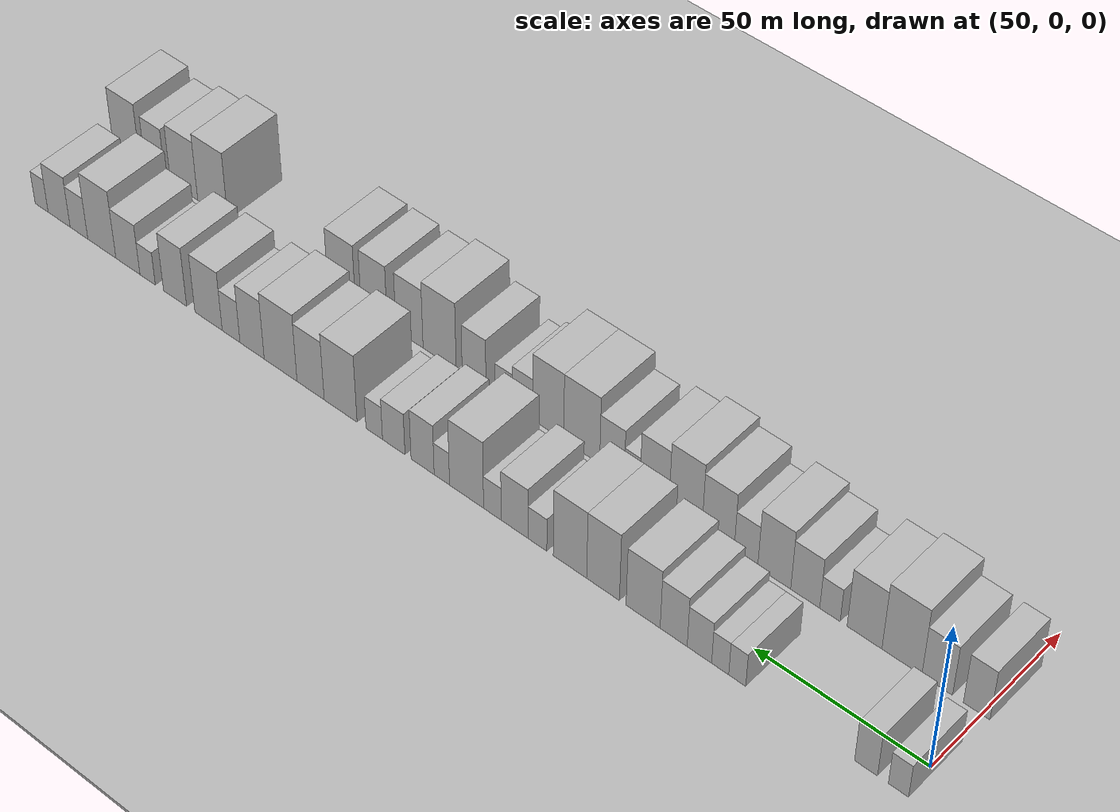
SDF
<sdf version="1.6">
 <world name="default">
  <include><name>ground_plane_1</name><uri>model://HANNAS_ground_plane</uri></include>
  <include>
   <name>ground_plane_2</name>
   <uri>model://HANNAS_ground_plane</uri>
   <pose>100 0 0  0 0 0</pose>
  </include>
  <model name="building_31">
   <static>1</static>
   <pose>50.0000 1.4991 0 0.000000 0.000000 0.000000</pose>
   <link name="link">
    <pose>0 0 6.00 0 0 0</pose>
    <collision name="collision"><geometry><box><size>20.0000 5.5599 12.0000</size></box></geometry></collision>
    <visual name="visual">
     <cast_shadows>0</cast_shadows>
     <geometry><box><size>20.0000 5.5599 12.0000</size></box></geometry>
     <material>
      <script>
       <uri>model://HANNAS_wall/materials/scripts</uri>
       <uri>model://HANNAS_wall/materials/textures</uri>
       <name>vrc/HANNAS_wall</name>
      </script>
     </material>
    </visual>
   </link>
  </model>
  <model name="building_32">
   <static>1</static>
   <pose>50.0000 10.4572 0 0.000000 0.000000 0.000000</pose>
   <link name="link">
    <pose>0 0 7.50 0 0 0</pose>
    <collision name="collision"><geometry><box><size>20.0000 6.3563 15.0000</size></box></geometry></collision>
    <visual name="visual">
     <cast_shadows>0</cast_shadows>
     <geometry><box><size>20.0000 6.3563 15.0000</size></box></geometry>
     <material>
      <script>
       <uri>model://HANNAS_wall/materials/scripts</uri>
       <uri>model://HANNAS_wall/materials/textures</uri>
       <name>vrc/HANNAS_wall</name>
      </script>
     </material>
    </visual>
   </link>
  </model>
  <model name="building_33">
   <static>1</static>
   <pose>50.0000 47.0578 0 0.000000 0.000000 0.000000</pose>
   <link name="link">
    <pose>0 0 6.00 0 0 0</pose>
    <collision name="collision"><geometry><box><size>20.0000 4.9483 12.0000</size></box></geometry></collision>
    <visual name="visual">
     <cast_shadows>0</cast_shadows>
     <geometry><box><size>20.0000 4.9483 12.0000</size></box></geometry>
     <material>
      <script>
       <uri>model://HANNAS_wall/materials/scripts</uri>
       <uri>model://HANNAS_wall/materials/textures</uri>
       <name>vrc/HANNAS_wall</name>
      </script>
     </material>
    </visual>
   </link>
  </model>
  <model name="building_34">
   <static>1</static>
   <pose>50.0000 52.0411 0 0.000000 0.000000 0.000000</pose>
   <link name="link">
    <pose>0 0 6.00 0 0 0</pose>
    <collision name="collision"><geometry><box><size>20.0000 5.0184 12.0000</size></box></geometry></collision>
    <visual name="visual">
     <cast_shadows>0</cast_shadows>
     <geometry><box><size>20.0000 5.0184 12.0000</size></box></geometry>
     <material>
      <script>
       <uri>model://HANNAS_wall/materials/scripts</uri>
       <uri>model://HANNAS_wall/materials/textures</uri>
       <name>vrc/HANNAS_wall</name>
      </script>
     </material>
    </visual>
   </link>
  </model>
  <model name="building_35">
   <static>1</static>
   <pose>50.0000 58.1626 0 0.000000 0.000000 0.000000</pose>
   <link name="link">
    <pose>0 0 7.50 0 0 0</pose>
    <collision name="collision"><geometry><box><size>20.0000 7.2245 15.0000</size></box></geometry></collision>
    <visual name="visual">
     <cast_shadows>0</cast_shadows>
     <geometry><box><size>20.0000 7.2245 15.0000</size></box></geometry>
     <material>
      <script>
       <uri>model://HANNAS_wall/materials/scripts</uri>
       <uri>model://HANNAS_wall/materials/textures</uri>
       <name>vrc/HANNAS_wall</name>
      </script>
     </material>
    </visual>
   </link>
  </model>
  <model name="building_36">
   <static>1</static>
   <pose>50.0000 65.8021 0 0.000000 0.000000 0.000000</pose>
   <link name="link">
    <pose>0 0 9.00 0 0 0</pose>
    <collision name="collision"><geometry><box><size>20.0000 8.0544 18.0000</size></box></geometry></collision>
    <visual name="visual">
     <cast_shadows>0</cast_shadows>
     <geometry><box><size>20.0000 8.0544 18.0000</size></box></geometry>
     <material>
      <script>
       <uri>model://HANNAS_wall/materials/scripts</uri>
       <uri>model://HANNAS_wall/materials/textures</uri>
       <name>vrc/HANNAS_wall</name>
      </script>
     </material>
    </visual>
   </link>
  </model>
  <model name="building_37">
   <static>1</static>
   <pose>50.0000 74.9746 0 0.000000 0.000000 0.000000</pose>
   <link name="link">
    <pose>0 0 10.50 0 0 0</pose>
    <collision name="collision"><geometry><box><size>20.0000 10.2906 21.0000</size></box></geometry></collision>
    <visual name="visual">
     <cast_shadows>0</cast_shadows>
     <geometry><box><size>20.0000 10.2906 21.0000</size></box></geometry>
     <material>
      <script>
       <uri>model://HANNAS_wall/materials/scripts</uri>
       <uri>model://HANNAS_wall/materials/textures</uri>
       <name>vrc/HANNAS_wall</name>
      </script>
     </material>
    </visual>
   </link>
  </model>
  <model name="building_38">
   <static>1</static>
   <pose>50.0000 87.1517 0 0.000000 0.000000 0.000000</pose>
   <link name="link">
    <pose>0 0 12.00 0 0 0</pose>
    <collision name="collision"><geometry><box><size>20.0000 10.0634 24.0000</size></box></geometry></collision>
    <visual name="visual">
     <cast_shadows>0</cast_shadows>
     <geometry><box><size>20.0000 10.0634 24.0000</size></box></geometry>
     <material>
      <script>
       <uri>model://HANNAS_wall/materials/scripts</uri>
       <uri>model://HANNAS_wall/materials/textures</uri>
       <name>vrc/HANNAS_wall</name>
      </script>
     </material>
    </visual>
   </link>
  </model>
  <model name="building_39">
   <static>1</static>
   <pose>50.0000 97.3643 0 0.000000 0.000000 0.000000</pose>
   <link name="link">
    <pose>0 0 12.00 0 0 0</pose>
    <collision name="collision"><geometry><box><size>20.0000 10.3618 24.0000</size></box></geometry></collision>
    <visual name="visual">
     <cast_shadows>0</cast_shadows>
     <geometry><box><size>20.0000 10.3618 24.0000</size></box></geometry>
     <material>
      <script>
       <uri>model://HANNAS_wall/materials/scripts</uri>
       <uri>model://HANNAS_wall/materials/textures</uri>
       <name>vrc/HANNAS_wall</name>
      </script>
     </material>
    </visual>
   </link>
  </model>
  <model name="building_40">
   <static>1</static>
   <pose>50.0000 107.4989 0 0.000000 0.000000 0.000000</pose>
   <link name="link">
    <pose>0 0 6.00 0 0 0</pose>
    <collision name="collision"><geometry><box><size>20.0000 5.9075 12.0000</size></box></geometry></collision>
    <visual name="visual">
     <cast_shadows>0</cast_shadows>
     <geometry><box><size>20.0000 5.9075 12.0000</size></box></geometry>
     <material>
      <script>
       <uri>model://HANNAS_wall/materials/scripts</uri>
       <uri>model://HANNAS_wall/materials/textures</uri>
       <name>vrc/HANNAS_wall</name>
      </script>
     </material>
    </visual>
   </link>
  </model>
  <model name="building_41">
   <static>1</static>
   <pose>50.0000 114.7138 0 0.000000 0.000000 0.000000</pose>
   <link name="link">
    <pose>0 0 9.00 0 0 0</pose>
    <collision name="collision"><geometry><box><size>20.0000 8.5223 18.0000</size></box></geometry></collision>
    <visual name="visual">
     <cast_shadows>0</cast_shadows>
     <geometry><box><size>20.0000 8.5223 18.0000</size></box></geometry>
     <material>
      <script>
       <uri>model://HANNAS_wall/materials/scripts</uri>
       <uri>model://HANNAS_wall/materials/textures</uri>
       <name>vrc/HANNAS_wall</name>
      </script>
     </material>
    </visual>
   </link>
  </model>
  <model name="building_42">
   <static>1</static>
   <pose>50.0000 121.7857 0 0.000000 0.000000 0.000000</pose>
   <link name="link">
    <pose>0 0 6.00 0 0 0</pose>
    <collision name="collision"><geometry><box><size>20.0000 5.6216 12.0000</size></box></geometry></collision>
    <visual name="visual">
     <cast_shadows>0</cast_shadows>
     <geometry><box><size>20.0000 5.6216 12.0000</size></box></geometry>
     <material>
      <script>
       <uri>model://HANNAS_wall/materials/scripts</uri>
       <uri>model://HANNAS_wall/materials/textures</uri>
       <name>vrc/HANNAS_wall</name>
      </script>
     </material>
    </visual>
   </link>
  </model>
  <model name="building_43">
   <static>1</static>
   <pose>50.0000 130.0969 0 0.000000 0.000000 0.000000</pose>
   <link name="link">
    <pose>0 0 12.00 0 0 0</pose>
    <collision name="collision"><geometry><box><size>20.0000 11.0009 24.0000</size></box></geometry></collision>
    <visual name="visual">
     <cast_shadows>0</cast_shadows>
     <geometry><box><size>20.0000 11.0009 24.0000</size></box></geometry>
     <material>
      <script>
       <uri>model://HANNAS_wall/materials/scripts</uri>
       <uri>model://HANNAS_wall/materials/textures</uri>
       <name>vrc/HANNAS_wall</name>
      </script>
     </material>
    </visual>
   </link>
  </model>
  <model name="building_44">
   <static>1</static>
   <pose>50.0000 138.1071 0 0.000000 0.000000 0.000000</pose>
   <link name="link">
    <pose>0 0 6.00 0 0 0</pose>
    <collision name="collision"><geometry><box><size>20.0000 5.0195 12.0000</size></box></geometry></collision>
    <visual name="visual">
     <cast_shadows>0</cast_shadows>
     <geometry><box><size>20.0000 5.0195 12.0000</size></box></geometry>
     <material>
      <script>
       <uri>model://HANNAS_wall/materials/scripts</uri>
       <uri>model://HANNAS_wall/materials/textures</uri>
       <name>vrc/HANNAS_wall</name>
      </script>
     </material>
    </visual>
   </link>
  </model>
  <model name="building_45">
   <static>1</static>
   <pose>50.0000 144.4214 0 0.000000 0.000000 0.000000</pose>
   <link name="link">
    <pose>0 0 9.00 0 0 0</pose>
    <collision name="collision"><geometry><box><size>20.0000 7.6092 18.0000</size></box></geometry></collision>
    <visual name="visual">
     <cast_shadows>0</cast_shadows>
     <geometry><box><size>20.0000 7.6092 18.0000</size></box></geometry>
     <material>
      <script>
       <uri>model://HANNAS_wall/materials/scripts</uri>
       <uri>model://HANNAS_wall/materials/textures</uri>
       <name>vrc/HANNAS_wall</name>
      </script>
     </material>
    </visual>
   </link>
  </model>
  <model name="building_46">
   <static>1</static>
   <pose>50.0000 153.9650 0 0.000000 0.000000 0.000000</pose>
   <link name="link">
    <pose>0 0 7.50 0 0 0</pose>
    <collision name="collision"><geometry><box><size>20.0000 7.4780 15.0000</size></box></geometry></collision>
    <visual name="visual">
     <cast_shadows>0</cast_shadows>
     <geometry><box><size>20.0000 7.4780 15.0000</size></box></geometry>
     <material>
      <script>
       <uri>model://HANNAS_wall/materials/scripts</uri>
       <uri>model://HANNAS_wall/materials/textures</uri>
       <name>vrc/HANNAS_wall</name>
      </script>
     </material>
    </visual>
   </link>
  </model>
  <model name="building_47">
   <static>1</static>
   <pose>50.0000 160.4777 0 0.000000 0.000000 0.000000</pose>
   <link name="link">
    <pose>0 0 6.00 0 0 0</pose>
    <collision name="collision"><geometry><box><size>20.0000 5.5474 12.0000</size></box></geometry></collision>
    <visual name="visual">
     <cast_shadows>0</cast_shadows>
     <geometry><box><size>20.0000 5.5474 12.0000</size></box></geometry>
     <material>
      <script>
       <uri>model://HANNAS_wall/materials/scripts</uri>
       <uri>model://HANNAS_wall/materials/textures</uri>
       <name>vrc/HANNAS_wall</name>
      </script>
     </material>
    </visual>
   </link>
  </model>
  <model name="building_48">
   <static>1</static>
   <pose>50.0000 171.8402 0 0.000000 0.000000 0.000000</pose>
   <link name="link">
    <pose>0 0 12.00 0 0 0</pose>
    <collision name="collision"><geometry><box><size>20.0000 11.1776 24.0000</size></box></geometry></collision>
    <visual name="visual">
     <cast_shadows>0</cast_shadows>
     <geometry><box><size>20.0000 11.1776 24.0000</size></box></geometry>
     <material>
      <script>
       <uri>model://HANNAS_wall/materials/scripts</uri>
       <uri>model://HANNAS_wall/materials/textures</uri>
       <name>vrc/HANNAS_wall</name>
      </script>
     </material>
    </visual>
   </link>
  </model>
  <model name="building_49">
   <static>1</static>
   <pose>50.0000 182.1017 0 0.000000 0.000000 0.000000</pose>
   <link name="link">
    <pose>0 0 10.50 0 0 0</pose>
    <collision name="collision"><geometry><box><size>20.0000 9.3454 21.0000</size></box></geometry></collision>
    <visual name="visual">
     <cast_shadows>0</cast_shadows>
     <geometry><box><size>20.0000 9.3454 21.0000</size></box></geometry>
     <material>
      <script>
       <uri>model://HANNAS_wall/materials/scripts</uri>
       <uri>model://HANNAS_wall/materials/textures</uri>
       <name>vrc/HANNAS_wall</name>
      </script>
     </material>
    </visual>
   </link>
  </model>
  <model name="building_50">
   <static>1</static>
   <pose>50.0000 192.4914 0 0.000000 0.000000 0.000000</pose>
   <link name="link">
    <pose>0 0 12.00 0 0 0</pose>
    <collision name="collision"><geometry><box><size>20.0000 11.4341 24.0000</size></box></geometry></collision>
    <visual name="visual">
     <cast_shadows>0</cast_shadows>
     <geometry><box><size>20.0000 11.4341 24.0000</size></box></geometry>
     <material>
      <script>
       <uri>model://HANNAS_wall/materials/scripts</uri>
       <uri>model://HANNAS_wall/materials/textures</uri>
       <name>vrc/HANNAS_wall</name>
      </script>
     </material>
    </visual>
   </link>
  </model>
  <model name="building_51">
   <static>1</static>
   <pose>50.0000 202.4804 0 0.000000 0.000000 0.000000</pose>
   <link name="link">
    <pose>0 0 10.50 0 0 0</pose>
    <collision name="collision"><geometry><box><size>20.0000 8.5439 21.0000</size></box></geometry></collision>
    <visual name="visual">
     <cast_shadows>0</cast_shadows>
     <geometry><box><size>20.0000 8.5439 21.0000</size></box></geometry>
     <material>
      <script>
       <uri>model://HANNAS_wall/materials/scripts</uri>
       <uri>model://HANNAS_wall/materials/textures</uri>
       <name>vrc/HANNAS_wall</name>
      </script>
     </material>
    </visual>
   </link>
  </model>
  <model name="building_52">
   <static>1</static>
   <pose>50.0000 209.9118 0 0.000000 0.000000 0.000000</pose>
   <link name="link">
    <pose>0 0 7.50 0 0 0</pose>
    <collision name="collision"><geometry><box><size>20.0000 6.3190 15.0000</size></box></geometry></collision>
    <visual name="visual">
     <cast_shadows>0</cast_shadows>
     <geometry><box><size>20.0000 6.3190 15.0000</size></box></geometry>
     <material>
      <script>
       <uri>model://HANNAS_wall/materials/scripts</uri>
       <uri>model://HANNAS_wall/materials/textures</uri>
       <name>vrc/HANNAS_wall</name>
      </script>
     </material>
    </visual>
   </link>
  </model>
  <model name="building_53">
   <static>1</static>
   <pose>50.0000 217.9810 0 0.000000 0.000000 0.000000</pose>
   <link name="link">
    <pose>0 0 10.50 0 0 0</pose>
    <collision name="collision"><geometry><box><size>20.0000 9.8193 21.0000</size></box></geometry></collision>
    <visual name="visual">
     <cast_shadows>0</cast_shadows>
     <geometry><box><size>20.0000 9.8193 21.0000</size></box></geometry>
     <material>
      <script>
       <uri>model://HANNAS_wall/materials/scripts</uri>
       <uri>model://HANNAS_wall/materials/textures</uri>
       <name>vrc/HANNAS_wall</name>
      </script>
     </material>
    </visual>
   </link>
  </model>
  <model name="building_54">
   <static>1</static>
   <pose>50.0000 230.0928 0 0.000000 0.000000 0.000000</pose>
   <link name="link">
    <pose>0 0 10.50 0 0 0</pose>
    <collision name="collision"><geometry><box><size>20.0000 8.4043 21.0000</size></box></geometry></collision>
    <visual name="visual">
     <cast_shadows>0</cast_shadows>
     <geometry><box><size>20.0000 8.4043 21.0000</size></box></geometry>
     <material>
      <script>
       <uri>model://HANNAS_wall/materials/scripts</uri>
       <uri>model://HANNAS_wall/materials/textures</uri>
       <name>vrc/HANNAS_wall</name>
      </script>
     </material>
    </visual>
   </link>
  </model>
  <model name="building_55">
   <static>1</static>
   <pose>50.0000 240.1317 0 0.000000 0.000000 0.000000</pose>
   <link name="link">
    <pose>0 0 6.00 0 0 0</pose>
    <collision name="collision"><geometry><box><size>20.0000 5.6735 12.0000</size></box></geometry></collision>
    <visual name="visual">
     <cast_shadows>0</cast_shadows>
     <geometry><box><size>20.0000 5.6735 12.0000</size></box></geometry>
     <material>
      <script>
       <uri>model://HANNAS_wall/materials/scripts</uri>
       <uri>model://HANNAS_wall/materials/textures</uri>
       <name>vrc/HANNAS_wall</name>
      </script>
     </material>
    </visual>
   </link>
  </model>
  <model name="building_56">
   <static>1</static>
   <pose>50.0000 247.4337 0 0.000000 0.000000 0.000000</pose>
   <link name="link">
    <pose>0 0 9.00 0 0 0</pose>
    <collision name="collision"><geometry><box><size>20.0000 8.9305 18.0000</size></box></geometry></collision>
    <visual name="visual">
     <cast_shadows>0</cast_shadows>
     <geometry><box><size>20.0000 8.9305 18.0000</size></box></geometry>
     <material>
      <script>
       <uri>model://HANNAS_wall/materials/scripts</uri>
       <uri>model://HANNAS_wall/materials/textures</uri>
       <name>vrc/HANNAS_wall</name>
      </script>
     </material>
    </visual>
   </link>
  </model>
  <model name="building_57">
   <static>1</static>
   <pose>50.0000 257.1720 0 0.000000 0.000000 0.000000</pose>
   <link name="link">
    <pose>0 0 12.00 0 0 0</pose>
    <collision name="collision"><geometry><box><size>20.0000 10.5462 24.0000</size></box></geometry></collision>
    <visual name="visual">
     <cast_shadows>0</cast_shadows>
     <geometry><box><size>20.0000 10.5462 24.0000</size></box></geometry>
     <material>
      <script>
       <uri>model://HANNAS_wall/materials/scripts</uri>
       <uri>model://HANNAS_wall/materials/textures</uri>
       <name>vrc/HANNAS_wall</name>
      </script>
     </material>
    </visual>
   </link>
  </model>
  <model name="building_58">
   <static>1</static>
   <pose>50.0000 265.8032 0 0.000000 0.000000 0.000000</pose>
   <link name="link">
    <pose>0 0 7.50 0 0 0</pose>
    <collision name="collision"><geometry><box><size>20.0000 6.7163 15.0000</size></box></geometry></collision>
    <visual name="visual">
     <cast_shadows>0</cast_shadows>
     <geometry><box><size>20.0000 6.7163 15.0000</size></box></geometry>
     <material>
      <script>
       <uri>model://HANNAS_wall/materials/scripts</uri>
       <uri>model://HANNAS_wall/materials/textures</uri>
       <name>vrc/HANNAS_wall</name>
      </script>
     </material>
    </visual>
   </link>
  </model>
  <model name="building_59">
   <static>1</static>
   <pose>50.0000 273.3749 0 0.000000 0.000000 0.000000</pose>
   <link name="link">
    <pose>0 0 9.00 0 0 0</pose>
    <collision name="collision"><geometry><box><size>20.0000 8.4271 18.0000</size></box></geometry></collision>
    <visual name="visual">
     <cast_shadows>0</cast_shadows>
     <geometry><box><size>20.0000 8.4271 18.0000</size></box></geometry>
     <material>
      <script>
       <uri>model://HANNAS_wall/materials/scripts</uri>
       <uri>model://HANNAS_wall/materials/textures</uri>
       <name>vrc/HANNAS_wall</name>
      </script>
     </material>
    </visual>
   </link>
  </model>
  <model name="building_60">
   <static>1</static>
   <pose>50.0000 280.0869 0 0.000000 0.000000 0.000000</pose>
   <link name="link">
    <pose>0 0 6.00 0 0 0</pose>
    <collision name="collision"><geometry><box><size>20.0000 4.9969 12.0000</size></box></geometry></collision>
    <visual name="visual">
     <cast_shadows>0</cast_shadows>
     <geometry><box><size>20.0000 4.9969 12.0000</size></box></geometry>
     <material>
      <script>
       <uri>model://HANNAS_wall/materials/scripts</uri>
       <uri>model://HANNAS_wall/materials/textures</uri>
       <name>vrc/HANNAS_wall</name>
      </script>
     </material>
    </visual>
   </link>
  </model>
  <model name="building_88">
   <static>1</static>
   <pose>79.0000 1.2902 0 0.000000 0.000000 0.000000</pose>
   <link name="link">
    <pose>0 0 9.00 0 0 0</pose>
    <collision name="collision"><geometry><box><size>20.0000 7.3502 18.0000</size></box></geometry></collision>
    <visual name="visual">
     <cast_shadows>0</cast_shadows>
     <geometry><box><size>20.0000 7.3502 18.0000</size></box></geometry>
     <material>
      <script>
       <uri>model://HANNAS_wall/materials/scripts</uri>
       <uri>model://HANNAS_wall/materials/textures</uri>
       <name>vrc/HANNAS_wall</name>
      </script>
     </material>
    </visual>
   </link>
  </model>
  <model name="building_89">
   <static>1</static>
   <pose>79.0000 12.2689 0 0.000000 0.000000 0.000000</pose>
   <link name="link">
    <pose>0 0 9.00 0 0 0</pose>
    <collision name="collision"><geometry><box><size>20.0000 8.6073 18.0000</size></box></geometry></collision>
    <visual name="visual">
     <cast_shadows>0</cast_shadows>
     <geometry><box><size>20.0000 8.6073 18.0000</size></box></geometry>
     <material>
      <script>
       <uri>model://HANNAS_wall/materials/scripts</uri>
       <uri>model://HANNAS_wall/materials/textures</uri>
       <name>vrc/HANNAS_wall</name>
      </script>
     </material>
    </visual>
   </link>
  </model>
  <model name="building_90">
   <static>1</static>
   <pose>79.0000 22.2402 0 0.000000 0.000000 0.000000</pose>
   <link name="link">
    <pose>0 0 12.00 0 0 0</pose>
    <collision name="collision"><geometry><box><size>20.0000 11.3353 24.0000</size></box></geometry></collision>
    <visual name="visual">
     <cast_shadows>0</cast_shadows>
     <geometry><box><size>20.0000 11.3353 24.0000</size></box></geometry>
     <material>
      <script>
       <uri>model://HANNAS_wall/materials/scripts</uri>
       <uri>model://HANNAS_wall/materials/textures</uri>
       <name>vrc/HANNAS_wall</name>
      </script>
     </material>
    </visual>
   </link>
  </model>
  <model name="building_91">
   <static>1</static>
   <pose>79.0000 32.9184 0 0.000000 0.000000 0.000000</pose>
   <link name="link">
    <pose>0 0 10.50 0 0 0</pose>
    <collision name="collision"><geometry><box><size>20.0000 10.0211 21.0000</size></box></geometry></collision>
    <visual name="visual">
     <cast_shadows>0</cast_shadows>
     <geometry><box><size>20.0000 10.0211 21.0000</size></box></geometry>
     <material>
      <script>
       <uri>model://HANNAS_wall/materials/scripts</uri>
       <uri>model://HANNAS_wall/materials/textures</uri>
       <name>vrc/HANNAS_wall</name>
      </script>
     </material>
    </visual>
   </link>
  </model>
  <model name="building_92">
   <static>1</static>
   <pose>79.0000 42.9083 0 0.000000 0.000000 0.000000</pose>
   <link name="link">
    <pose>0 0 6.00 0 0 0</pose>
    <collision name="collision"><geometry><box><size>20.0000 5.9586 12.0000</size></box></geometry></collision>
    <visual name="visual">
     <cast_shadows>0</cast_shadows>
     <geometry><box><size>20.0000 5.9586 12.0000</size></box></geometry>
     <material>
      <script>
       <uri>model://HANNAS_wall/materials/scripts</uri>
       <uri>model://HANNAS_wall/materials/textures</uri>
       <name>vrc/HANNAS_wall</name>
      </script>
     </material>
    </visual>
   </link>
  </model>
  <model name="building_93">
   <static>1</static>
   <pose>79.0000 50.1505 0 0.000000 0.000000 0.000000</pose>
   <link name="link">
    <pose>0 0 9.00 0 0 0</pose>
    <collision name="collision"><geometry><box><size>20.0000 8.5257 18.0000</size></box></geometry></collision>
    <visual name="visual">
     <cast_shadows>0</cast_shadows>
     <geometry><box><size>20.0000 8.5257 18.0000</size></box></geometry>
     <material>
      <script>
       <uri>model://HANNAS_wall/materials/scripts</uri>
       <uri>model://HANNAS_wall/materials/textures</uri>
       <name>vrc/HANNAS_wall</name>
      </script>
     </material>
    </visual>
   </link>
  </model>
  <model name="building_94">
   <static>1</static>
   <pose>79.0000 59.3352 0 0.000000 0.000000 0.000000</pose>
   <link name="link">
    <pose>0 0 10.50 0 0 0</pose>
    <collision name="collision"><geometry><box><size>20.0000 9.8437 21.0000</size></box></geometry></collision>
    <visual name="visual">
     <cast_shadows>0</cast_shadows>
     <geometry><box><size>20.0000 9.8437 21.0000</size></box></geometry>
     <material>
      <script>
       <uri>model://HANNAS_wall/materials/scripts</uri>
       <uri>model://HANNAS_wall/materials/textures</uri>
       <name>vrc/HANNAS_wall</name>
      </script>
     </material>
    </visual>
   </link>
  </model>
  <model name="building_95">
   <static>1</static>
   <pose>79.0000 67.8153 0 0.000000 0.000000 0.000000</pose>
   <link name="link">
    <pose>0 0 7.50 0 0 0</pose>
    <collision name="collision"><geometry><box><size>20.0000 7.1166 15.0000</size></box></geometry></collision>
    <visual name="visual">
     <cast_shadows>0</cast_shadows>
     <geometry><box><size>20.0000 7.1166 15.0000</size></box></geometry>
     <material>
      <script>
       <uri>model://HANNAS_wall/materials/scripts</uri>
       <uri>model://HANNAS_wall/materials/textures</uri>
       <name>vrc/HANNAS_wall</name>
      </script>
     </material>
    </visual>
   </link>
  </model>
  <model name="building_96">
   <static>1</static>
   <pose>79.0000 76.2552 0 0.000000 0.000000 0.000000</pose>
   <link name="link">
    <pose>0 0 10.50 0 0 0</pose>
    <collision name="collision"><geometry><box><size>20.0000 9.7632 21.0000</size></box></geometry></collision>
    <visual name="visual">
     <cast_shadows>0</cast_shadows>
     <geometry><box><size>20.0000 9.7632 21.0000</size></box></geometry>
     <material>
      <script>
       <uri>model://HANNAS_wall/materials/scripts</uri>
       <uri>model://HANNAS_wall/materials/textures</uri>
       <name>vrc/HANNAS_wall</name>
      </script>
     </material>
    </visual>
   </link>
  </model>
  <model name="building_97">
   <static>1</static>
   <pose>79.0000 86.2231 0 0.000000 0.000000 0.000000</pose>
   <link name="link">
    <pose>0 0 12.00 0 0 0</pose>
    <collision name="collision"><geometry><box><size>20.0000 10.1726 24.0000</size></box></geometry></collision>
    <visual name="visual">
     <cast_shadows>0</cast_shadows>
     <geometry><box><size>20.0000 10.1726 24.0000</size></box></geometry>
     <material>
      <script>
       <uri>model://HANNAS_wall/materials/scripts</uri>
       <uri>model://HANNAS_wall/materials/textures</uri>
       <name>vrc/HANNAS_wall</name>
      </script>
     </material>
    </visual>
   </link>
  </model>
  <model name="building_98">
   <static>1</static>
   <pose>79.0000 95.8264 0 0.000000 0.000000 0.000000</pose>
   <link name="link">
    <pose>0 0 10.50 0 0 0</pose>
    <collision name="collision"><geometry><box><size>20.0000 9.0341 21.0000</size></box></geometry></collision>
    <visual name="visual">
     <cast_shadows>0</cast_shadows>
     <geometry><box><size>20.0000 9.0341 21.0000</size></box></geometry>
     <material>
      <script>
       <uri>model://HANNAS_wall/materials/scripts</uri>
       <uri>model://HANNAS_wall/materials/textures</uri>
       <name>vrc/HANNAS_wall</name>
      </script>
     </material>
    </visual>
   </link>
  </model>
  <model name="building_99">
   <static>1</static>
   <pose>79.0000 102.7937 0 0.000000 0.000000 0.000000</pose>
   <link name="link">
    <pose>0 0 6.00 0 0 0</pose>
    <collision name="collision"><geometry><box><size>20.0000 4.9004 12.0000</size></box></geometry></collision>
    <visual name="visual">
     <cast_shadows>0</cast_shadows>
     <geometry><box><size>20.0000 4.9004 12.0000</size></box></geometry>
     <material>
      <script>
       <uri>model://HANNAS_wall/materials/scripts</uri>
       <uri>model://HANNAS_wall/materials/textures</uri>
       <name>vrc/HANNAS_wall</name>
      </script>
     </material>
    </visual>
   </link>
  </model>
  <model name="building_100">
   <static>1</static>
   <pose>79.0000 109.1263 0 0.000000 0.000000 0.000000</pose>
   <link name="link">
    <pose>0 0 9.00 0 0 0</pose>
    <collision name="collision"><geometry><box><size>20.0000 7.7648 18.0000</size></box></geometry></collision>
    <visual name="visual">
     <cast_shadows>0</cast_shadows>
     <geometry><box><size>20.0000 7.7648 18.0000</size></box></geometry>
     <material>
      <script>
       <uri>model://HANNAS_wall/materials/scripts</uri>
       <uri>model://HANNAS_wall/materials/textures</uri>
       <name>vrc/HANNAS_wall</name>
      </script>
     </material>
    </visual>
   </link>
  </model>
  <model name="building_101">
   <static>1</static>
   <pose>79.0000 118.7620 0 0.000000 0.000000 0.000000</pose>
   <link name="link">
    <pose>0 0 12.00 0 0 0</pose>
    <collision name="collision"><geometry><box><size>20.0000 11.5066 24.0000</size></box></geometry></collision>
    <visual name="visual">
     <cast_shadows>0</cast_shadows>
     <geometry><box><size>20.0000 11.5066 24.0000</size></box></geometry>
     <material>
      <script>
       <uri>model://HANNAS_wall/materials/scripts</uri>
       <uri>model://HANNAS_wall/materials/textures</uri>
       <name>vrc/HANNAS_wall</name>
      </script>
     </material>
    </visual>
   </link>
  </model>
  <model name="building_102">
   <static>1</static>
   <pose>79.0000 129.5415 0 0.000000 0.000000 0.000000</pose>
   <link name="link">
    <pose>0 0 12.00 0 0 0</pose>
    <collision name="collision"><geometry><box><size>20.0000 10.0525 24.0000</size></box></geometry></collision>
    <visual name="visual">
     <cast_shadows>0</cast_shadows>
     <geometry><box><size>20.0000 10.0525 24.0000</size></box></geometry>
     <material>
      <script>
       <uri>model://HANNAS_wall/materials/scripts</uri>
       <uri>model://HANNAS_wall/materials/textures</uri>
       <name>vrc/HANNAS_wall</name>
      </script>
     </material>
    </visual>
   </link>
  </model>
  <model name="building_103">
   <static>1</static>
   <pose>79.0000 137.8850 0 0.000000 0.000000 0.000000</pose>
   <link name="link">
    <pose>0 0 7.50 0 0 0</pose>
    <collision name="collision"><geometry><box><size>20.0000 6.6344 15.0000</size></box></geometry></collision>
    <visual name="visual">
     <cast_shadows>0</cast_shadows>
     <geometry><box><size>20.0000 6.6344 15.0000</size></box></geometry>
     <material>
      <script>
       <uri>model://HANNAS_wall/materials/scripts</uri>
       <uri>model://HANNAS_wall/materials/textures</uri>
       <name>vrc/HANNAS_wall</name>
      </script>
     </material>
    </visual>
   </link>
  </model>
  <model name="building_104">
   <static>1</static>
   <pose>79.0000 144.0664 0 0.000000 0.000000 0.000000</pose>
   <link name="link">
    <pose>0 0 6.00 0 0 0</pose>
    <collision name="collision"><geometry><box><size>20.0000 5.7284 12.0000</size></box></geometry></collision>
    <visual name="visual">
     <cast_shadows>0</cast_shadows>
     <geometry><box><size>20.0000 5.7284 12.0000</size></box></geometry>
     <material>
      <script>
       <uri>model://HANNAS_wall/materials/scripts</uri>
       <uri>model://HANNAS_wall/materials/textures</uri>
       <name>vrc/HANNAS_wall</name>
      </script>
     </material>
    </visual>
   </link>
  </model>
  <model name="building_105">
   <static>1</static>
   <pose>79.0000 153.9160 0 0.000000 0.000000 0.000000</pose>
   <link name="link">
    <pose>0 0 9.00 0 0 0</pose>
    <collision name="collision"><geometry><box><size>20.0000 7.9709 18.0000</size></box></geometry></collision>
    <visual name="visual">
     <cast_shadows>0</cast_shadows>
     <geometry><box><size>20.0000 7.9709 18.0000</size></box></geometry>
     <material>
      <script>
       <uri>model://HANNAS_wall/materials/scripts</uri>
       <uri>model://HANNAS_wall/materials/textures</uri>
       <name>vrc/HANNAS_wall</name>
      </script>
     </material>
    </visual>
   </link>
  </model>
  <model name="building_106">
   <static>1</static>
   <pose>79.0000 165.5113 0 0.000000 0.000000 0.000000</pose>
   <link name="link">
    <pose>0 0 12.00 0 0 0</pose>
    <collision name="collision"><geometry><box><size>20.0000 11.2196 24.0000</size></box></geometry></collision>
    <visual name="visual">
     <cast_shadows>0</cast_shadows>
     <geometry><box><size>20.0000 11.2196 24.0000</size></box></geometry>
     <material>
      <script>
       <uri>model://HANNAS_wall/materials/scripts</uri>
       <uri>model://HANNAS_wall/materials/textures</uri>
       <name>vrc/HANNAS_wall</name>
      </script>
     </material>
    </visual>
   </link>
  </model>
  <model name="building_107">
   <static>1</static>
   <pose>79.0000 175.7644 0 0.000000 0.000000 0.000000</pose>
   <link name="link">
    <pose>0 0 10.50 0 0 0</pose>
    <collision name="collision"><geometry><box><size>20.0000 9.2866 21.0000</size></box></geometry></collision>
    <visual name="visual">
     <cast_shadows>0</cast_shadows>
     <geometry><box><size>20.0000 9.2866 21.0000</size></box></geometry>
     <material>
      <script>
       <uri>model://HANNAS_wall/materials/scripts</uri>
       <uri>model://HANNAS_wall/materials/textures</uri>
       <name>vrc/HANNAS_wall</name>
      </script>
     </material>
    </visual>
   </link>
  </model>
  <model name="building_108">
   <static>1</static>
   <pose>79.0000 187.9494 0 0.000000 0.000000 0.000000</pose>
   <link name="link">
    <pose>0 0 10.50 0 0 0</pose>
    <collision name="collision"><geometry><box><size>20.0000 9.0834 21.0000</size></box></geometry></collision>
    <visual name="visual">
     <cast_shadows>0</cast_shadows>
     <geometry><box><size>20.0000 9.0834 21.0000</size></box></geometry>
     <material>
      <script>
       <uri>model://HANNAS_wall/materials/scripts</uri>
       <uri>model://HANNAS_wall/materials/textures</uri>
       <name>vrc/HANNAS_wall</name>
      </script>
     </material>
    </visual>
   </link>
  </model>
  <model name="building_109">
   <static>1</static>
   <pose>79.0000 199.3552 0 0.000000 0.000000 0.000000</pose>
   <link name="link">
    <pose>0 0 10.50 0 0 0</pose>
    <collision name="collision"><geometry><box><size>20.0000 9.7282 21.0000</size></box></geometry></collision>
    <visual name="visual">
     <cast_shadows>0</cast_shadows>
     <geometry><box><size>20.0000 9.7282 21.0000</size></box></geometry>
     <material>
      <script>
       <uri>model://HANNAS_wall/materials/scripts</uri>
       <uri>model://HANNAS_wall/materials/textures</uri>
       <name>vrc/HANNAS_wall</name>
      </script>
     </material>
    </visual>
   </link>
  </model>
  <model name="building_110">
   <static>1</static>
   <pose>79.0000 245.9598 0 0.000000 0.000000 0.000000</pose>
   <link name="link">
    <pose>0 0 12.00 0 0 0</pose>
    <collision name="collision"><geometry><box><size>20.0000 11.1604 24.0000</size></box></geometry></collision>
    <visual name="visual">
     <cast_shadows>0</cast_shadows>
     <geometry><box><size>20.0000 11.1604 24.0000</size></box></geometry>
     <material>
      <script>
       <uri>model://HANNAS_wall/materials/scripts</uri>
       <uri>model://HANNAS_wall/materials/textures</uri>
       <name>vrc/HANNAS_wall</name>
      </script>
     </material>
    </visual>
   </link>
  </model>
  <model name="building_111">
   <static>1</static>
   <pose>79.0000 256.6646 0 0.000000 0.000000 0.000000</pose>
   <link name="link">
    <pose>0 0 10.50 0 0 0</pose>
    <collision name="collision"><geometry><box><size>20.0000 10.2490 21.0000</size></box></geometry></collision>
    <visual name="visual">
     <cast_shadows>0</cast_shadows>
     <geometry><box><size>20.0000 10.2490 21.0000</size></box></geometry>
     <material>
      <script>
       <uri>model://HANNAS_wall/materials/scripts</uri>
       <uri>model://HANNAS_wall/materials/textures</uri>
       <name>vrc/HANNAS_wall</name>
      </script>
     </material>
    </visual>
   </link>
  </model>
  <model name="building_112">
   <static>1</static>
   <pose>79.0000 267.6099 0 0.000000 0.000000 0.000000</pose>
   <link name="link">
    <pose>0 0 9.00 0 0 0</pose>
    <collision name="collision"><geometry><box><size>20.0000 7.6417 18.0000</size></box></geometry></collision>
    <visual name="visual">
     <cast_shadows>0</cast_shadows>
     <geometry><box><size>20.0000 7.6417 18.0000</size></box></geometry>
     <material>
      <script>
       <uri>model://HANNAS_wall/materials/scripts</uri>
       <uri>model://HANNAS_wall/materials/textures</uri>
       <name>vrc/HANNAS_wall</name>
      </script>
     </material>
    </visual>
   </link>
  </model>
  <model name="building_113">
   <static>1</static>
   <pose>79.0000 278.5769 0 0.000000 0.000000 0.000000</pose>
   <link name="link">
    <pose>0 0 10.50 0 0 0</pose>
    <collision name="collision"><geometry><box><size>20.0000 10.2922 21.0000</size></box></geometry></collision>
    <visual name="visual">
     <cast_shadows>0</cast_shadows>
     <geometry><box><size>20.0000 10.2922 21.0000</size></box></geometry>
     <material>
      <script>
       <uri>model://HANNAS_wall/materials/scripts</uri>
       <uri>model://HANNAS_wall/materials/textures</uri>
       <name>vrc/HANNAS_wall</name>
      </script>
     </material>
    </visual>
   </link>
  </model>
 </world>
</sdf>
